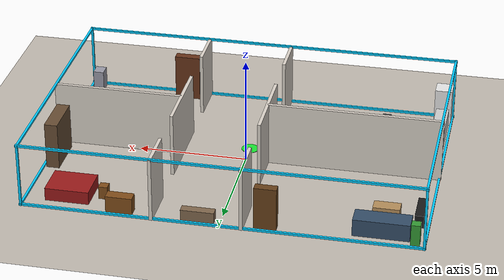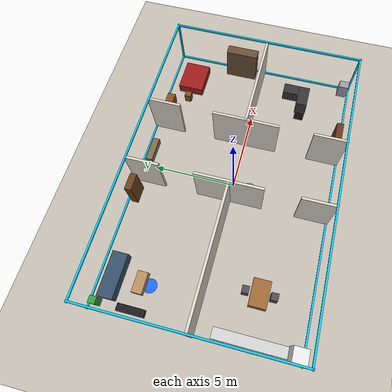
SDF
<?xml version="1.0" ?>
<sdf version="1.9">
  <world name="house_5room_complex">
    <physics type="ode">
      <max_step_size>0.004</max_step_size>
      <real_time_factor>1.0</real_time_factor>
      <real_time_update_rate>250</real_time_update_rate>
    </physics>
    <plugin name="gz::sim::systems::Physics" filename="gz-sim-physics-system"/>
    <plugin name="gz::sim::systems::UserCommands" filename="gz-sim-user-commands-system"/>
    <plugin name="gz::sim::systems::SceneBroadcaster" filename="gz-sim-scene-broadcaster-system"/>
    <plugin name="gz::sim::systems::Contact" filename="gz-sim-contact-system"/>
    <plugin name="gz::sim::systems::Imu" filename="gz-sim-imu-system"/>
    <plugin name="gz::sim::systems::AirPressure" filename="gz-sim-air-pressure-system"/>
    <plugin name="gz::sim::systems::ApplyLinkWrench" filename="gz-sim-apply-link-wrench-system"/>
    <plugin name="gz::sim::systems::Sensors" filename="gz-sim-sensors-system">
      <render_engine>ogre2</render_engine>
    </plugin>
    <gui fullscreen="false"/>

    <!-- Sunlight -->
    <light type="directional" name="sun">
      <cast_shadows>true</cast_shadows>
      <pose>0 0 10 0 0 0</pose>
      <diffuse>0.8 0.8 0.8 1</diffuse>
      <specular>0.2 0.2 0.2 1</specular>
      <attenuation>
        <range>1000</range>
        <constant>0.9</constant>
        <linear>0.01</linear>
        <quadratic>0.001</quadratic>
      </attenuation>
      <direction>-0.5 0.1 -0.9</direction>
    </light>

    <!-- GROUND PLANE — 18m x 12m -->
    <model name="ground_plane">
      <static>true</static>
      <pose>0 0 0 0 0 0</pose>
      <link name="link">
        <collision name="collision">
          <geometry><plane><normal>0 0 1</normal><size>18 12</size></plane></geometry>
          <surface><friction><ode><mu>100</mu><mu2>50</mu2></ode></friction></surface>
        </collision>
        <visual name="visual">
          <geometry><plane><normal>0 0 1</normal><size>18 12</size></plane></geometry>
          <material>
            <ambient>0.75 0.72 0.68 1</ambient>
            <diffuse>0.75 0.72 0.68 1</diffuse>
          </material>
        </visual>
      </link>
    </model>

    <!-- OUTER WALLS — Invisible collisions + cyan wireframe -->
    <model name="outer_walls">
      <static>true</static>
      <link name="walls_link">
        <collision name="c_north"><pose>0 6 1.5 0 0 0</pose><geometry><box><size>18 0.15 3</size></box></geometry></collision>
        <collision name="c_south"><pose>0 -6 1.5 0 0 0</pose><geometry><box><size>18 0.15 3</size></box></geometry></collision>
        <collision name="c_east"><pose>9 0 1.5 0 0 0</pose><geometry><box><size>0.15 12 3</size></box></geometry></collision>
        <collision name="c_west"><pose>-9 0 1.5 0 0 0</pose><geometry><box><size>0.15 12 3</size></box></geometry></collision>
        <collision name="c_ceiling"><pose>0 0 3 0 0 0</pose><geometry><box><size>18 12 0.1</size></box></geometry></collision>

        <visual name="vp_nw"><pose>-8.925 5.925 1.5 0 0 0</pose><geometry><box><size>0.1 0.1 3</size></box></geometry><material><ambient>0 0.8 1 1</ambient><diffuse>0 0.8 1 1</diffuse></material></visual>
        <visual name="vp_ne"><pose>8.925 5.925 1.5 0 0 0</pose><geometry><box><size>0.1 0.1 3</size></box></geometry><material><ambient>0 0.8 1 1</ambient><diffuse>0 0.8 1 1</diffuse></material></visual>
        <visual name="vp_sw"><pose>-8.925 -5.925 1.5 0 0 0</pose><geometry><box><size>0.1 0.1 3</size></box></geometry><material><ambient>0 0.8 1 1</ambient><diffuse>0 0.8 1 1</diffuse></material></visual>
        <visual name="vp_se"><pose>8.925 -5.925 1.5 0 0 0</pose><geometry><box><size>0.1 0.1 3</size></box></geometry><material><ambient>0 0.8 1 1</ambient><diffuse>0 0.8 1 1</diffuse></material></visual>
        <visual name="vt_n"><pose>0 5.925 3 0 0 0</pose><geometry><box><size>18 0.1 0.1</size></box></geometry><material><ambient>0 0.8 1 1</ambient><diffuse>0 0.8 1 1</diffuse></material></visual>
        <visual name="vt_s"><pose>0 -5.925 3 0 0 0</pose><geometry><box><size>18 0.1 0.1</size></box></geometry><material><ambient>0 0.8 1 1</ambient><diffuse>0 0.8 1 1</diffuse></material></visual>
        <visual name="vt_e"><pose>8.925 0 3 0 0 0</pose><geometry><box><size>0.1 12 0.1</size></box></geometry><material><ambient>0 0.8 1 1</ambient><diffuse>0 0.8 1 1</diffuse></material></visual>
        <visual name="vt_w"><pose>-8.925 0 3 0 0 0</pose><geometry><box><size>0.1 12 0.1</size></box></geometry><material><ambient>0 0.8 1 1</ambient><diffuse>0 0.8 1 1</diffuse></material></visual>
        <visual name="vb_n"><pose>0 5.925 0.05 0 0 0</pose><geometry><box><size>18 0.1 0.1</size></box></geometry><material><ambient>0 0.8 1 1</ambient><diffuse>0 0.8 1 1</diffuse></material></visual>
        <visual name="vb_s"><pose>0 -5.925 0.05 0 0 0</pose><geometry><box><size>18 0.1 0.1</size></box></geometry><material><ambient>0 0.8 1 1</ambient><diffuse>0 0.8 1 1</diffuse></material></visual>
        <visual name="vb_e"><pose>8.925 0 0.05 0 0 0</pose><geometry><box><size>0.1 12 0.1</size></box></geometry><material><ambient>0 0.8 1 1</ambient><diffuse>0 0.8 1 1</diffuse></material></visual>
        <visual name="vb_w"><pose>-8.925 0 0.05 0 0 0</pose><geometry><box><size>0.1 12 0.1</size></box></geometry><material><ambient>0 0.8 1 1</ambient><diffuse>0 0.8 1 1</diffuse></material></visual>
      </link>
    </model>

    <!-- INTERNAL WALLS — 5 Room Layout                               -->
    <!-- Central Hallway (X: -1 to 3). Doors dynamically placed.      -->
    <model name="internal_walls">
      <static>true</static>
      <link name="link">
        <!-- Horizontal dividers -->
        <collision name="h1"><pose>-5 0 1.5 0 0 0</pose><geometry><box><size>8 0.15 3</size></box></geometry></collision>
        <visual name="v_h1"><pose>-5 0 1.5 0 0 0</pose><geometry><box><size>8 0.15 3</size></box></geometry><material><ambient>0.85 0.82 0.78 1</ambient><diffuse>0.85 0.82 0.78 1</diffuse></material></visual>

        <collision name="h2"><pose>6 0 1.5 0 0 0</pose><geometry><box><size>6 0.15 3</size></box></geometry></collision>
        <visual name="v_h2"><pose>6 0 1.5 0 0 0</pose><geometry><box><size>6 0.15 3</size></box></geometry><material><ambient>0.85 0.82 0.78 1</ambient><diffuse>0.85 0.82 0.78 1</diffuse></material></visual>

        <!-- Vertical Left (X=-1) -->
        <collision name="vl1"><pose>-1 5 1.5 0 0 0</pose><geometry><box><size>0.15 2 3</size></box></geometry></collision>
        <visual name="v_vl1"><pose>-1 5 1.5 0 0 0</pose><geometry><box><size>0.15 2 3</size></box></geometry><material><ambient>0.85 0.82 0.78 1</ambient><diffuse>0.85 0.82 0.78 1</diffuse></material></visual>

        <collision name="vl2"><pose>-1 0 1.5 0 0 0</pose><geometry><box><size>0.15 4 3</size></box></geometry></collision>
        <visual name="v_vl2"><pose>-1 0 1.5 0 0 0</pose><geometry><box><size>0.15 4 3</size></box></geometry><material><ambient>0.85 0.82 0.78 1</ambient><diffuse>0.85 0.82 0.78 1</diffuse></material></visual>

        <collision name="vl3"><pose>-1 -5 1.5 0 0 0</pose><geometry><box><size>0.15 2 3</size></box></geometry></collision>
        <visual name="v_vl3"><pose>-1 -5 1.5 0 0 0</pose><geometry><box><size>0.15 2 3</size></box></geometry><material><ambient>0.85 0.82 0.78 1</ambient><diffuse>0.85 0.82 0.78 1</diffuse></material></visual>

        <!-- Vertical Right (X=3) -->
        <collision name="vr1"><pose>3 5 1.5 0 0 0</pose><geometry><box><size>0.15 2 3</size></box></geometry></collision>
        <visual name="v_vr1"><pose>3 5 1.5 0 0 0</pose><geometry><box><size>0.15 2 3</size></box></geometry><material><ambient>0.85 0.82 0.78 1</ambient><diffuse>0.85 0.82 0.78 1</diffuse></material></visual>

        <collision name="vr2"><pose>3 0 1.5 0 0 0</pose><geometry><box><size>0.15 4 3</size></box></geometry></collision>
        <visual name="v_vr2"><pose>3 0 1.5 0 0 0</pose><geometry><box><size>0.15 4 3</size></box></geometry><material><ambient>0.85 0.82 0.78 1</ambient><diffuse>0.85 0.82 0.78 1</diffuse></material></visual>

        <collision name="vr3"><pose>3 -5 1.5 0 0 0</pose><geometry><box><size>0.15 2 3</size></box></geometry></collision>
        <visual name="v_vr3"><pose>3 -5 1.5 0 0 0</pose><geometry><box><size>0.15 2 3</size></box></geometry><material><ambient>0.85 0.82 0.78 1</ambient><diffuse>0.85 0.82 0.78 1</diffuse></material></visual>
      </link>
    </model>

    <!-- FURNITURE & CLUTTER                                          -->

    <!-- ROOM 1: LIVING ROOM (Top Left) -->
    <model name="living_sofa">
      <static>true</static><pose>-7 5 0.4 0 0 0</pose>
      <link name="link">
        <collision name="c"><geometry><box><size>2.5 0.9 0.8</size></box></geometry></collision>
        <visual name="v"><geometry><box><size>2.5 0.9 0.8</size></box></geometry><material><ambient>0.2 0.3 0.4 1</ambient><diffuse>0.2 0.3 0.4 1</diffuse></material></visual>
      </link>
    </model>
    <model name="living_coffee_table">
      <static>true</static><pose>-7 3.5 0.25 0 0 0</pose>
      <link name="link">
        <collision name="c"><geometry><box><size>1.2 0.6 0.5</size></box></geometry></collision>
        <visual name="v"><geometry><box><size>1.2 0.6 0.5</size></box></geometry><material><ambient>0.7 0.55 0.35 1</ambient><diffuse>0.7 0.55 0.35 1</diffuse></material></visual>
      </link>
    </model>
    <model name="living_tv_stand">
      <static>true</static><pose>-8.5 3.5 0.3 0 0 0</pose>
      <link name="link">
        <collision name="c"><geometry><box><size>0.4 1.5 0.6</size></box></geometry></collision>
        <visual name="v"><geometry><box><size>0.4 1.5 0.6</size></box></geometry><material><ambient>0.1 0.1 0.1 1</ambient><diffuse>0.1 0.1 0.1 1</diffuse></material></visual>
      </link>
    </model>
    <model name="living_plant">
      <static>true</static><pose>-8.5 5.5 0.5 0 0 0</pose>
      <link name="link">
        <collision name="c"><geometry><box><size>0.4 0.4 1.0</size></box></geometry></collision>
        <visual name="v"><geometry><box><size>0.4 0.4 1.0</size></box></geometry><material><ambient>0.2 0.6 0.2 1</ambient><diffuse>0.2 0.6 0.2 1</diffuse></material></visual>
      </link>
    </model>
    <model name="living_bookshelf">
      <static>true</static><pose>-2 5.5 1.0 0 0 0</pose>
      <link name="link">
        <collision name="c"><geometry><box><size>1.0 0.4 2.0</size></box></geometry></collision>
        <visual name="v"><geometry><box><size>1.0 0.4 2.0</size></box></geometry><material><ambient>0.4 0.25 0.1 1</ambient><diffuse>0.4 0.25 0.1 1</diffuse></material></visual>
      </link>
    </model>

    <!-- ROOM 2: KITCHEN & DINING (Bottom Left) -->
    <model name="dining_table">
      <static>true</static><pose>-6 -3 0.4 0 0 0</pose>
      <link name="link">
        <collision name="c"><geometry><box><size>1.5 1.0 0.8</size></box></geometry></collision>
        <visual name="v"><geometry><box><size>1.5 1.0 0.8</size></box></geometry><material><ambient>0.6 0.4 0.2 1</ambient><diffuse>0.6 0.4 0.2 1</diffuse></material></visual>
      </link>
    </model>
    <model name="dining_chair1">
      <static>true</static><pose>-6 -2.2 0.45 0 0 0</pose>
      <link name="link">
        <collision name="c"><geometry><box><size>0.4 0.4 0.9</size></box></geometry></collision>
        <visual name="v"><geometry><box><size>0.4 0.4 0.9</size></box></geometry><material><ambient>0.3 0.3 0.3 1</ambient><diffuse>0.3 0.3 0.3 1</diffuse></material></visual>
      </link>
    </model>
    <model name="dining_chair2">
      <static>true</static><pose>-6 -3.8 0.45 0 0 0</pose>
      <link name="link">
        <collision name="c"><geometry><box><size>0.4 0.4 0.9</size></box></geometry></collision>
        <visual name="v"><geometry><box><size>0.4 0.4 0.9</size></box></geometry><material><ambient>0.3 0.3 0.3 1</ambient><diffuse>0.3 0.3 0.3 1</diffuse></material></visual>
      </link>
    </model>
    <model name="kitchen_counter">
      <static>true</static><pose>-8.5 -3 0.45 0 0 0</pose>
      <link name="link">
        <collision name="c"><geometry><box><size>0.6 4.0 0.9</size></box></geometry></collision>
        <visual name="v"><geometry><box><size>0.6 4.0 0.9</size></box></geometry><material><ambient>0.8 0.8 0.8 1</ambient><diffuse>0.8 0.8 0.8 1</diffuse></material></visual>
      </link>
    </model>
    <model name="kitchen_fridge">
      <static>true</static><pose>-8.5 -5.5 0.9 0 0 0</pose>
      <link name="link">
        <collision name="c"><geometry><box><size>0.8 0.8 1.8</size></box></geometry></collision>
        <visual name="v"><geometry><box><size>0.8 0.8 1.8</size></box></geometry><material><ambient>0.9 0.9 0.9 1</ambient><diffuse>0.9 0.9 0.9 1</diffuse></material></visual>
      </link>
    </model>

    <!-- ROOM 3: CENTRAL HALLWAY (Middle) -->
    <model name="hall_bench">
      <static>true</static><pose>1 5.5 0.25 0 0 0</pose>
      <link name="link">
        <collision name="c"><geometry><box><size>1.5 0.4 0.5</size></box></geometry></collision>
        <visual name="v"><geometry><box><size>1.5 0.4 0.5</size></box></geometry><material><ambient>0.5 0.4 0.3 1</ambient><diffuse>0.5 0.4 0.3 1</diffuse></material></visual>
      </link>
    </model>

    <!-- ROOM 4: MASTER BEDROOM (Top Right) -->
    <model name="bedroom_bed">
      <static>true</static><pose>7 4.5 0.3 0 0 0</pose>
      <link name="link">
        <collision name="c"><geometry><box><size>2.0 1.6 0.6</size></box></geometry></collision>
        <visual name="v"><geometry><box><size>2.0 1.6 0.6</size></box></geometry><material><ambient>0.6 0.1 0.1 1</ambient><diffuse>0.6 0.1 0.1 1</diffuse></material></visual>
      </link>
    </model>
    <model name="bedroom_wardrobe">
      <static>true</static><pose>8.5 1.5 1.1 0 0 0</pose>
      <link name="link">
        <collision name="c"><geometry><box><size>0.6 2.0 2.2</size></box></geometry></collision>
        <visual name="v"><geometry><box><size>0.6 2.0 2.2</size></box></geometry><material><ambient>0.4 0.3 0.2 1</ambient><diffuse>0.4 0.3 0.2 1</diffuse></material></visual>
      </link>
    </model>
    <model name="bedroom_dresser">
      <static>true</static><pose>4.5 5.5 0.4 0 0 0</pose>
      <link name="link">
        <collision name="c"><geometry><box><size>1.2 0.5 0.8</size></box></geometry></collision>
        <visual name="v"><geometry><box><size>1.2 0.5 0.8</size></box></geometry><material><ambient>0.5 0.3 0.1 1</ambient><diffuse>0.5 0.3 0.1 1</diffuse></material></visual>
      </link>
    </model>
    <model name="bedroom_nightstand">
      <static>true</static><pose>5.5 4.5 0.3 0 0 0</pose>
      <link name="link">
        <collision name="c"><geometry><box><size>0.4 0.4 0.6</size></box></geometry></collision>
        <visual name="v"><geometry><box><size>0.4 0.4 0.6</size></box></geometry><material><ambient>0.5 0.3 0.1 1</ambient><diffuse>0.5 0.3 0.1 1</diffuse></material></visual>
      </link>
    </model>

    <!-- ROOM 5: EXECUTIVE OFFICE (Bottom Right) -->
    <model name="office_desk_main">
      <static>true</static><pose>7 -3 0.375 0 0 0</pose>
      <link name="link">
        <collision name="c"><geometry><box><size>1.6 0.7 0.75</size></box></geometry></collision>
        <visual name="v"><geometry><box><size>1.6 0.7 0.75</size></box></geometry><material><ambient>0.2 0.2 0.2 1</ambient><diffuse>0.2 0.2 0.2 1</diffuse></material></visual>
      </link>
    </model>
    <model name="office_desk_return">
      <static>true</static><pose>7.45 -2.15 0.375 0 0 0</pose>
      <link name="link">
        <collision name="c"><geometry><box><size>0.7 1.0 0.75</size></box></geometry></collision>
        <visual name="v"><geometry><box><size>0.7 1.0 0.75</size></box></geometry><material><ambient>0.2 0.2 0.2 1</ambient><diffuse>0.2 0.2 0.2 1</diffuse></material></visual>
      </link>
    </model>
    <model name="office_chair">
      <static>true</static><pose>6 -3 0.45 0 0 0</pose>
      <link name="link">
        <collision name="c"><geometry><box><size>0.6 0.6 0.9</size></box></geometry></collision>
        <visual name="v"><geometry><box><size>0.6 0.6 0.9</size></box></geometry><material><ambient>0.1 0.1 0.1 1</ambient><diffuse>0.1 0.1 0.1 1</diffuse></material></visual>
      </link>
    </model>
    <model name="office_bookshelf">
      <static>true</static><pose>4 -5.5 1.1 0 0 0</pose>
      <link name="link">
        <collision name="c"><geometry><box><size>1.2 0.4 2.2</size></box></geometry></collision>
        <visual name="v"><geometry><box><size>1.2 0.4 2.2</size></box></geometry><material><ambient>0.4 0.2 0.1 1</ambient><diffuse>0.4 0.2 0.1 1</diffuse></material></visual>
      </link>
    </model>
    <model name="office_cabinet">
      <static>true</static><pose>8.5 -5.5 0.5 0 0 0</pose>
      <link name="link">
        <collision name="c"><geometry><box><size>0.5 0.6 1.0</size></box></geometry></collision>
        <visual name="v"><geometry><box><size>0.5 0.6 1.0</size></box></geometry><material><ambient>0.6 0.6 0.65 1</ambient><diffuse>0.6 0.6 0.65 1</diffuse></material></visual>
      </link>
    </model>

    <!-- MARKERS -->
    <model name="marker_start">
      <static>true</static><pose>0 -1 0.01 0 0 0</pose>
      <link name="link">
        <visual name="v"><geometry><cylinder><radius>0.4</radius><length>0.02</length></cylinder></geometry><material><ambient>0.1 0.9 0.2 1</ambient></material></visual>
      </link>
    </model>
    <model name="marker_dest_1">
      <static>true</static><pose>-7 3 0.01 0 0 0</pose>
      <link name="link">
        <visual name="v"><geometry><cylinder><radius>0.4</radius><length>0.02</length></cylinder></geometry><material><ambient>0.1 0.4 0.95 1</ambient></material></visual>
      </link>
    </model>

  </world>
</sdf>
